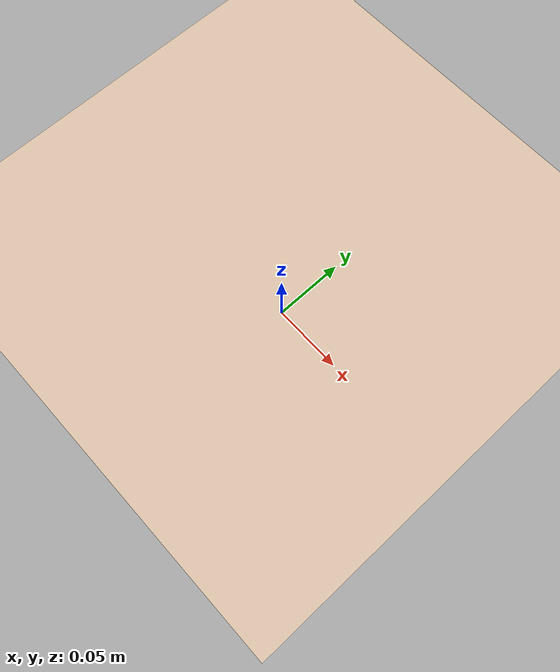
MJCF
<?xml version="1.0"?>
<mujoco model="robot">
  <worldbody>
    <geom name="table_top" type="box" pos="0.0 0.0 0.0" size="10 10 0.1" rgba="0.9 0.8 0.7 1" friction="0.3"/>
    <body>
      <joint type="free"/>
      <geom name="object1" type="sphere" pos="0.0 0.0 0.0" euler="0 0 0" size="0.1" rgba="1.0 1.0 1.0 1.0" friction="0.3"/>
      <inertial pos="0 0 0" mass="0.1" diaginertia="0.0004 0.0004 0.0004"/>
    </body>

  </worldbody>
</mujoco>
